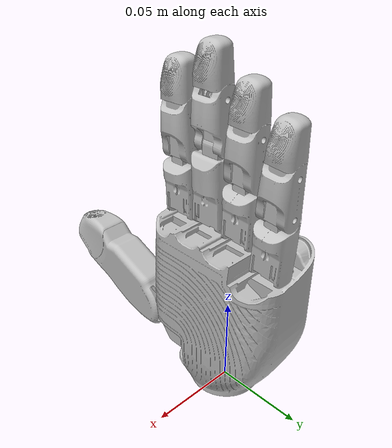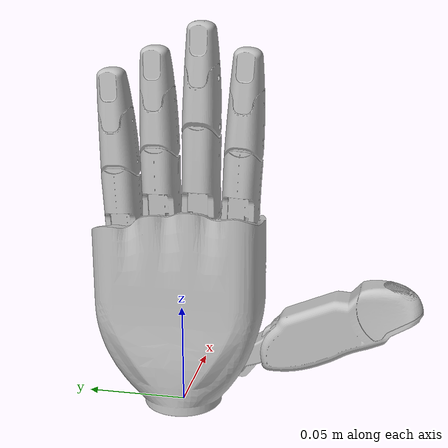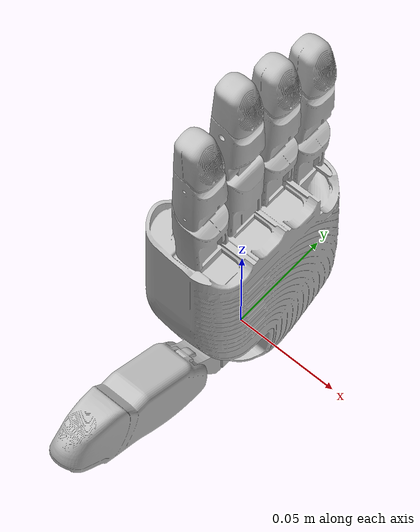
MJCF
<mujoco model="CASIAHAND-M">
  <compiler angle="radian"/>

  <asset>
    <mesh name="base_link" content_type="model/stl" file="./meshes/base_link.STL"/>
    <mesh name="Empty_Link1-1" content_type="model/stl" file="./meshes/Empty_Link1-1.STL"/>
    <mesh name="Empty_Link1-2" content_type="model/stl" file="./meshes/Empty_Link1-2.STL"/>
    <mesh name="Empty_Link2-1" content_type="model/stl" file="./meshes/Empty_Link2-1.STL"/>
    <mesh name="Empty_Link2-2" content_type="model/stl" file="./meshes/Empty_Link2-2.STL"/>
    <mesh name="Empty_Link2-3" content_type="model/stl" file="./meshes/Empty_Link2-3.STL"/>
    <mesh name="Empty_Link3-1" content_type="model/stl" file="./meshes/Empty_Link3-1.STL"/>
    <mesh name="Empty_Link3-2" content_type="model/stl" file="./meshes/Empty_Link3-2.STL"/>
    <mesh name="Empty_Link3-3" content_type="model/stl" file="./meshes/Empty_Link3-3.STL"/>
    <mesh name="Empty_Link4-1" content_type="model/stl" file="./meshes/Empty_Link4-1.STL"/>
    <mesh name="Empty_Link4-2" content_type="model/stl" file="./meshes/Empty_Link4-2.STL"/>
    <mesh name="Empty_Link4-3" content_type="model/stl" file="./meshes/Empty_Link4-3.STL"/>
    <mesh name="Empty_Link5-1" content_type="model/stl" file="./meshes/Empty_Link5-1.STL"/>
    <mesh name="Empty_Link5-2" content_type="model/stl" file="./meshes/Empty_Link5-2.STL"/>
    <mesh name="Empty_Link5-3" content_type="model/stl" file="./meshes/Empty_Link5-3.STL"/>
  </asset>

  <worldbody>
    <geom type="mesh" rgba="0.752941 0.752941 0.752941 1" mesh="base_link"/>
    <body name="Empty_Link1-1" pos="0.0083614 -0.018144 0.013699">
      <inertial pos="-0.000679874 -0.010507 0.0112253" quat="0.774022 0.631736 -0.0424011 -0.00105693" mass="0.00662831" diaginertia="3.70546e-07 3.59064e-07 1.84228e-07"/>
      <joint name="thumb1" pos="0 0 0" axis="0 0 1" range="0 1.57"/>
      <geom type="mesh" rgba="0.752941 0.752941 0.752941 1" mesh="Empty_Link1-1"/>
      <body name="Empty_Link1-2" pos="-0.0055 -0.029112 0.020996">
        <inertial pos="0.00497815 -0.0250192 0.0073418" quat="0.847106 0.529548 0.0237955 -0.0377408" mass="0.0317328" diaginertia="1.11169e-05 1.06917e-05 2.71156e-06"/>
        <joint name="thumb2" pos="0 0 0" axis="1 0 0" range="-1.204 0"/>
        <geom type="mesh" rgba="0.752941 0.752941 0.752941 1" mesh="Empty_Link1-2"/>
      </body>
    </body>
    <body name="Empty_Link2-1" pos="0.0042728 -0.024135 0.10396" quat="0.999661 0.0260196 0 0">
      <inertial pos="-0.00119055 -0.00484453 0.0116663" quat="0.683473 0.00377001 -0.0237408 0.72958" mass="0.0100825" diaginertia="8.51961e-07 8.15775e-07 2.73859e-07"/>
      <joint name="index1" pos="0 0 0" axis="0 1 0" range="0 1.57"/>
      <geom type="mesh" rgba="0.752941 0.752941 0.752941 1" mesh="Empty_Link2-1"/>
      <body name="Empty_Link2-2" pos="0 -0.0094 0.03">
        <inertial pos="-4.93324e-05 0.00444871 0.0101449" quat="0.999682 -0.00293771 0.0235128 -0.0085781" mass="0.00639189" diaginertia="5.4525e-07 5.09409e-07 2.60947e-07"/>
        <joint name="index2" pos="0 0 0" axis="0 1 0" range="0 1.57"/>
        <geom type="mesh" rgba="0.752941 0.752941 0.752941 1" mesh="Empty_Link2-2"/>
        <body name="Empty_Link2-3" pos="0.00017147 0.0010463 0.019999">
          <inertial pos="-0.000848055 0.00351749 0.0125728" quat="0.706992 0.0122608 0.0127485 0.707" mass="0.0041299" diaginertia="2.03044e-07 1.77148e-07 1.1503e-07"/>
          <joint name="index3" pos="0 0 0" axis="0 -1 0" range="-0.523 0"/>
          <geom type="mesh" rgba="0.752941 0.752941 0.752941 1" mesh="Empty_Link2-3"/>
        </body>
      </body>
    </body>
    <body name="Empty_Link3-1" pos="0.0042728 -0.014418 0.10493" quat="0.999962 0.00872639 0 0">
      <inertial pos="-0.000793392 0.00510252 0.0166417" quat="0.709351 -0.0116412 0.00622164 0.704732" mass="0.0146234" diaginertia="1.89478e-06 1.81593e-06 4.16575e-07"/>
      <joint name="middle1" pos="0 0 0" axis="0 1 0" range="0 1.57"/>
      <geom type="mesh" rgba="0.752941 0.752941 0.752941 1" mesh="Empty_Link3-1"/>
      <body name="Empty_Link3-2" pos="0 0.0114 0.037">
        <inertial pos="-7.59461e-07 -0.00644046 0.0125571" quat="0.995749 0.000594962 0.0920984 -0.00142846" mass="0.00798997" diaginertia="5.51137e-07 5.23142e-07 2.94362e-07"/>
        <joint name="middle2" pos="0 0 0" axis="0 1 0" range="0 1.57"/>
        <geom type="mesh" rgba="0.752941 0.752941 0.752941 1" mesh="Empty_Link3-2"/>
        <body name="Empty_Link3-3" pos="0 -0.0009 0.023">
          <inertial pos="-0.000638064 -0.00560177 0.0122406" quat="0.706445 0.0329848 0.0331858 0.70622" mass="0.00426457" diaginertia="2.17543e-07 1.90259e-07 1.18223e-07"/>
          <joint name="middle3" pos="0 0 0" axis="0 -1 0" range="-0.523 0"/>
          <geom type="mesh" rgba="0.752941 0.752941 0.752941 1" mesh="Empty_Link3-3"/>
        </body>
      </body>
    </body>
    <body name="Empty_Link4-1" pos="0.0042728 0.014875 0.10332" quat="0.999961 -0.00888438 0 0">
      <inertial pos="-0.00119055 -0.00484453 0.0116663" quat="0.683472 0.0037701 -0.0237407 0.729581" mass="0.0100825" diaginertia="8.5196e-07 8.15774e-07 2.73859e-07"/>
      <joint name="ring1" pos="0 0 0" axis="0 1 0" range="0 1.57"/>
      <geom type="mesh" rgba="0.752941 0.752941 0.752941 1" mesh="Empty_Link4-1"/>
      <body name="Empty_Link4-2" pos="0 -0.0094 0.03">
        <inertial pos="-4.93237e-05 0.00443756 0.0101449" quat="0.999682 -0.00293973 0.0235119 -0.00859111" mass="0.00639188" diaginertia="5.45249e-07 5.09408e-07 2.60946e-07"/>
        <joint name="ring2" pos="0 0 0" axis="0 1 0" range="0 1.57"/>
        <geom type="mesh" rgba="0.752941 0.752941 0.752941 1" mesh="Empty_Link4-2"/>
        <body name="Empty_Link4-3" pos="0.00017147 0.0010154 0.019999">
          <inertial pos="-0.00084804 0.00351748 0.0125728" quat="0.706992 0.0122571 0.0127485 0.707001" mass="0.00412992" diaginertia="2.03045e-07 1.77149e-07 1.15031e-07"/>
          <joint name="ring3" pos="0 0 0" axis="0 -1 0" range="-0.523 0"/>
          <geom type="mesh" rgba="0.752941 0.752941 0.752941 1" mesh="Empty_Link4-3"/>
        </body>
      </body>
    </body>
    <body name="Empty_Link5-1" pos="0.0042728 0.033878 0.092334" quat="0.999653 -0.0263345 0 0">
      <inertial pos="-0.00119055 -0.00484453 0.0116663" quat="0.683473 0.00377 -0.0237408 0.72958" mass="0.0100825" diaginertia="8.51961e-07 8.15775e-07 2.73859e-07"/>
      <joint name="little1" pos="0 0 0" axis="0 1 0" range="0 1.57"/>
      <geom type="mesh" rgba="0.752941 0.752941 0.752941 1" mesh="Empty_Link5-1"/>
      <body name="Empty_Link5-2" pos="0 -0.0014 0.03">
        <inertial pos="-0.000136304 -0.00361419 0.0101441" quat="0.999774 -0.00290325 0.0192257 -0.00860268" mass="0.00639187" diaginertia="5.45249e-07 5.09408e-07 2.60946e-07"/>
        <joint name="little2" pos="0 0 0" axis="0 1 0" range="0 1.57"/>
        <geom type="mesh" rgba="0.752941 0.752941 0.752941 1" mesh="Empty_Link5-2"/>
        <body name="Empty_Link5-3" pos="0 0 0.02">
          <inertial pos="-0.00077168 -0.00348251 0.0125777" quat="0.70695 0.014405 0.0148949 0.70696" mass="0.00412992" diaginertia="2.03045e-07 1.77149e-07 1.15031e-07"/>
          <joint name="little3" pos="0 0 0" axis="0 -1 0" range="-0.523 0"/>
          <geom type="mesh" rgba="0.752941 0.752941 0.752941 1" mesh="Empty_Link5-3"/>
        </body>
      </body>
    </body>
  </worldbody>
</mujoco>
